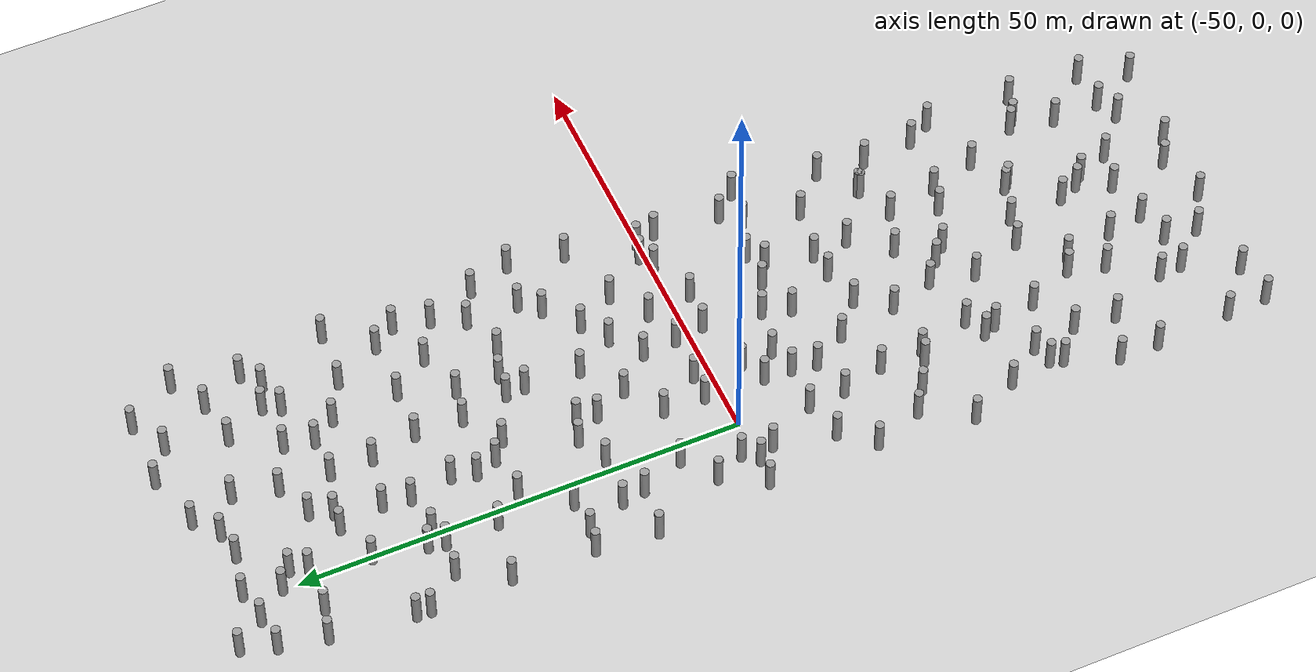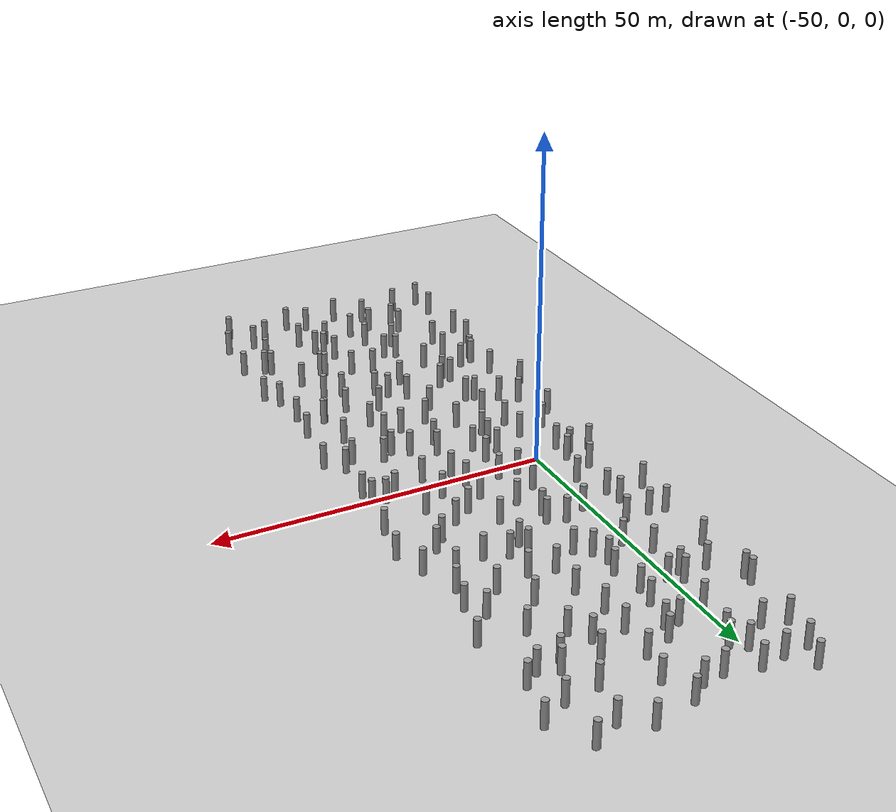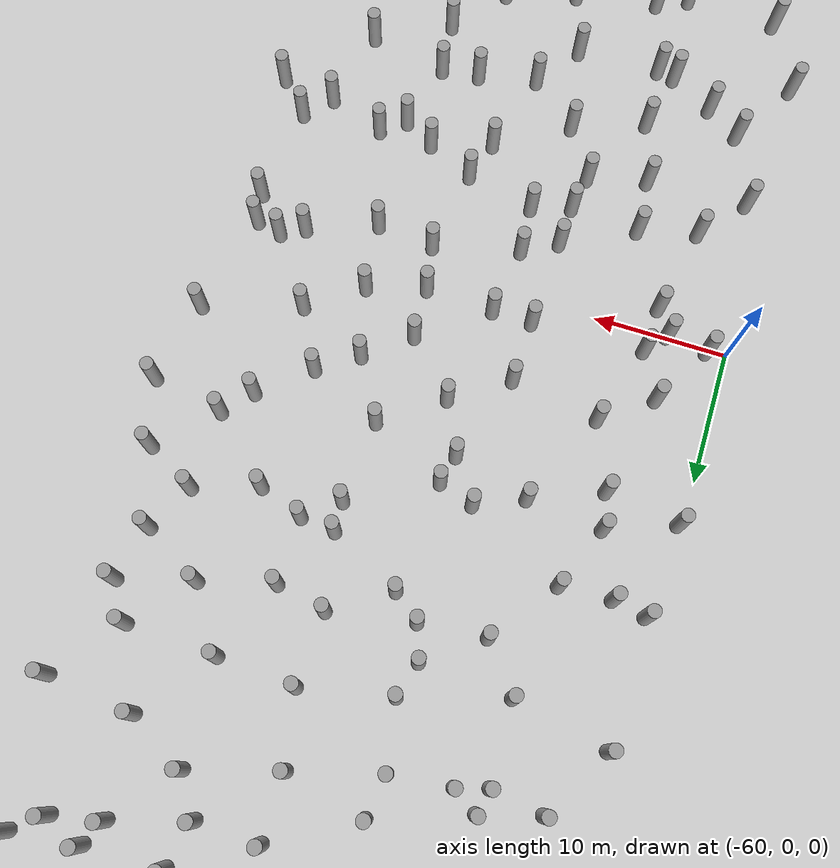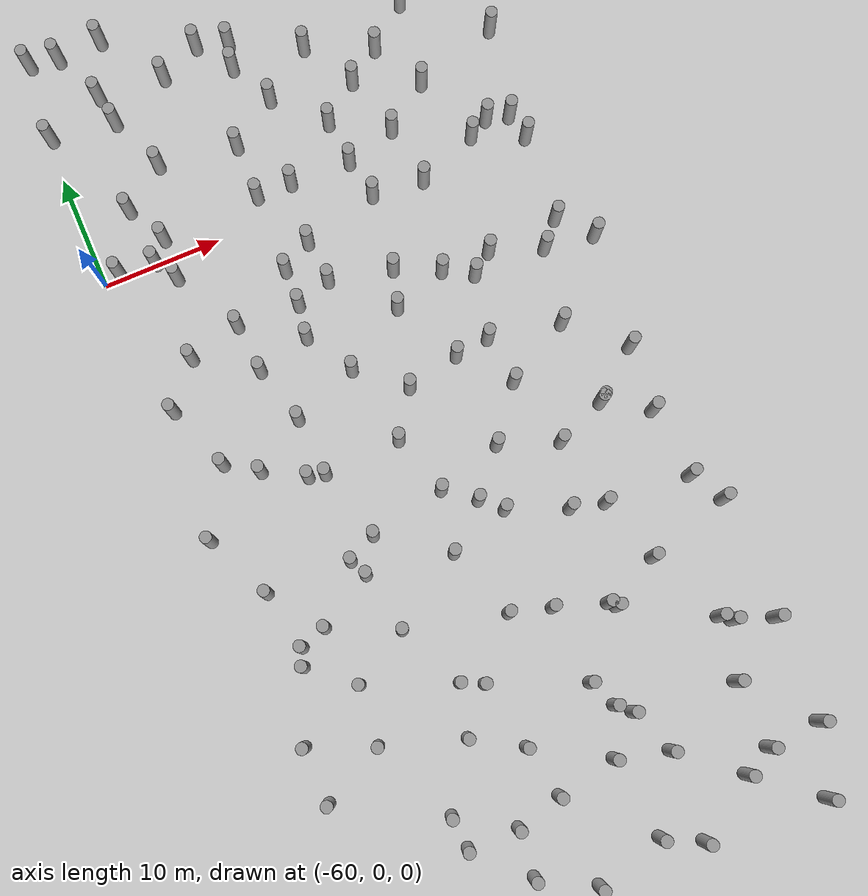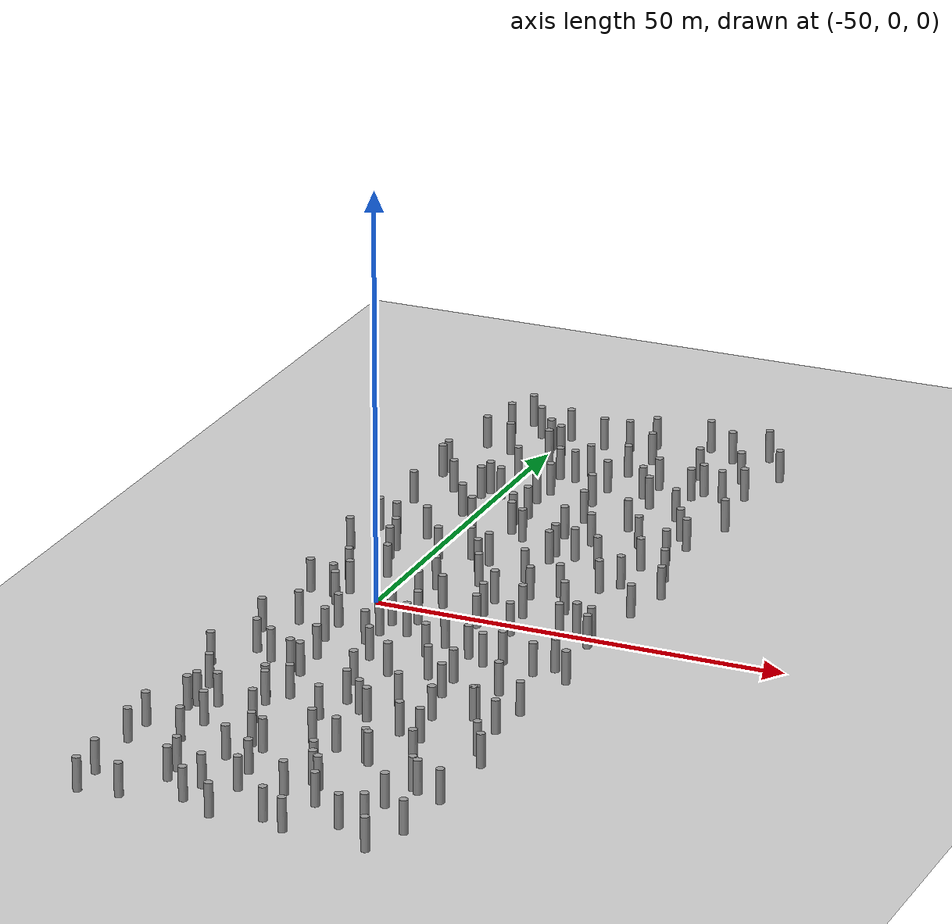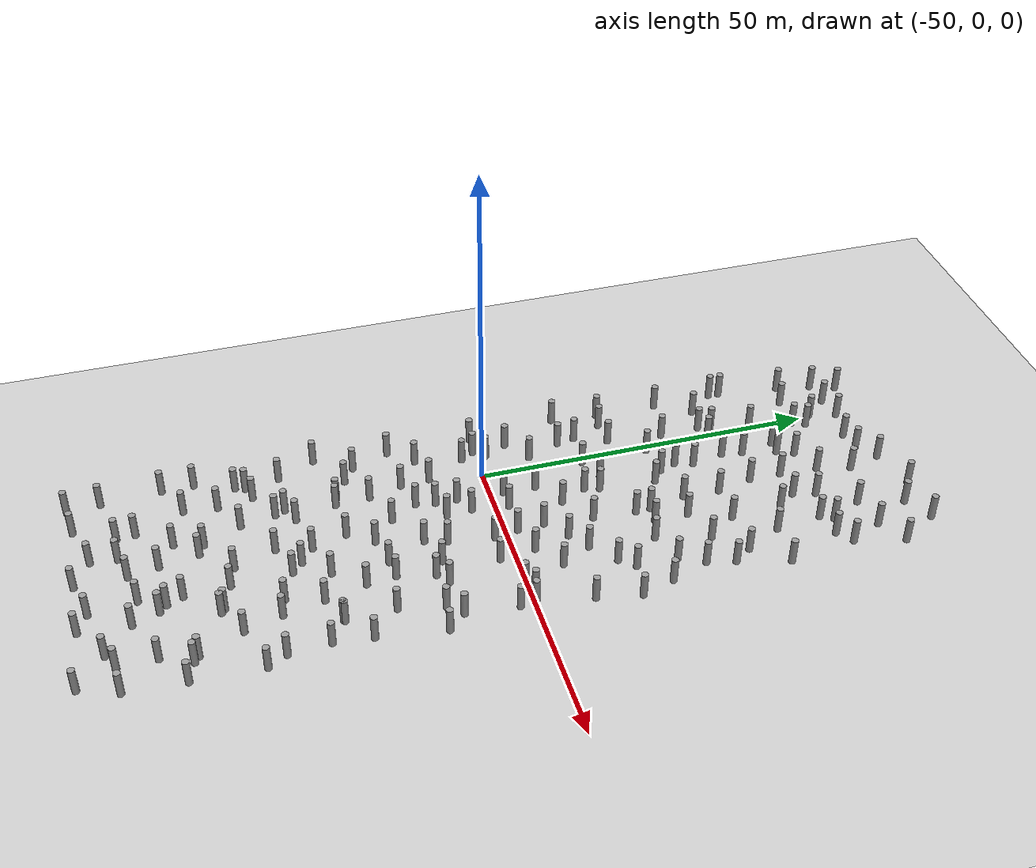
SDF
<sdf version="1.6">
 <world name="default">
  <model name="ground_plane">
   <static>1</static>
   <link name="link">
    <collision name="collision">
     <geometry><plane><normal>0 0 1</normal><size>200 200</size></plane></geometry>
     <surface><friction><ode><mu>100</mu><mu2>50</mu2></ode></friction></surface>
    </collision>
    <visual name="visual">
     <cast_shadows>0</cast_shadows>
     <geometry><plane><normal>0 0 1</normal><size>200 200</size></plane></geometry>
     <material>
      <script><uri>file://media/materials/scripts/gazebo.material</uri><name>Gazebo/Grey</name></script>
     </material>
    </visual>
   </link>
   <pose>0 100 0 0 0 0</pose>
  </model>
  <include>
   <name>tree_-58.2274148097_-58.8383424693</name>
   <uri>model://tree</uri>
   <pose>-58.2274148097 -58.8383424693 2 0 0 0</pose>
  </include>
  <include>
   <name>tree_-58.4916522315_-54.0885505528</name>
   <uri>model://tree</uri>
   <pose>-58.4916522315 -54.0885505528 2 0 0 0</pose>
  </include>
  <include>
   <name>tree_-58.9903051866_-45.344155304</name>
   <uri>model://tree</uri>
   <pose>-58.9903051866 -45.344155304 2 0 0 0</pose>
  </include>
  <include>
   <name>tree_-59.0742666468_-40.730722932</name>
   <uri>model://tree</uri>
   <pose>-59.0742666468 -40.730722932 2 0 0 0</pose>
  </include>
  <include>
   <name>tree_-56.8344243115_-35.0828755712</name>
   <uri>model://tree</uri>
   <pose>-56.8344243115 -35.0828755712 2 0 0 0</pose>
  </include>
  <include>
   <name>tree_-56.3498334585_-33.6391085534</name>
   <uri>model://tree</uri>
   <pose>-56.3498334585 -33.6391085534 2 0 0 0</pose>
  </include>
  <include>
   <name>tree_-57.2682477639_-28.6887981575</name>
   <uri>model://tree</uri>
   <pose>-57.2682477639 -28.6887981575 2 0 0 0</pose>
  </include>
  <include>
   <name>tree_-59.8201435387_-23.1401341406</name>
   <uri>model://tree</uri>
   <pose>-59.8201435387 -23.1401341406 2 0 0 0</pose>
  </include>
  <include>
   <name>tree_-56.640564499_-17.8299297852</name>
   <uri>model://tree</uri>
   <pose>-56.640564499 -17.8299297852 2 0 0 0</pose>
  </include>
  <include>
   <name>tree_-58.6699227876_-12.2633457693</name>
   <uri>model://tree</uri>
   <pose>-58.6699227876 -12.2633457693 2 0 0 0</pose>
  </include>
  <include>
   <name>tree_-55.7125337996_-8.7544738364</name>
   <uri>model://tree</uri>
   <pose>-55.7125337996 -8.7544738364 2 0 0 0</pose>
  </include>
  <include>
   <name>tree_-55.4535133352_-0.0317501232224</name>
   <uri>model://tree</uri>
   <pose>-55.4535133352 -0.0317501232224 2 0 0 0</pose>
  </include>
  <include>
   <name>tree_-58.5228750858_0.31885613598</name>
   <uri>model://tree</uri>
   <pose>-58.5228750858 0.31885613598 2 0 0 0</pose>
  </include>
  <include>
   <name>tree_-55.8228398987_5.02941124096</name>
   <uri>model://tree</uri>
   <pose>-55.8228398987 5.02941124096 2 0 0 0</pose>
  </include>
  <include>
   <name>tree_-59.5610232251_13.4654506251</name>
   <uri>model://tree</uri>
   <pose>-59.5610232251 13.4654506251 2 0 0 0</pose>
  </include>
  <include>
   <name>tree_-56.4786687583_19.9223055259</name>
   <uri>model://tree</uri>
   <pose>-56.4786687583 19.9223055259 2 0 0 0</pose>
  </include>
  <include>
   <name>tree_-58.9280560511_20.3702629405</name>
   <uri>model://tree</uri>
   <pose>-58.9280560511 20.3702629405 2 0 0 0</pose>
  </include>
  <include>
   <name>tree_-58.6954111815_29.6490568716</name>
   <uri>model://tree</uri>
   <pose>-58.6954111815 29.6490568716 2 0 0 0</pose>
  </include>
  <include>
   <name>tree_-55.7131548604_34.7773403898</name>
   <uri>model://tree</uri>
   <pose>-55.7131548604 34.7773403898 2 0 0 0</pose>
  </include>
  <include>
   <name>tree_-58.9364265224_38.7444154299</name>
   <uri>model://tree</uri>
   <pose>-58.9364265224 38.7444154299 2 0 0 0</pose>
  </include>
  <include>
   <name>tree_-58.8538250546_40.3182792419</name>
   <uri>model://tree</uri>
   <pose>-58.8538250546 40.3182792419 2 0 0 0</pose>
  </include>
  <include>
   <name>tree_-57.7645659668_49.5563178604</name>
   <uri>model://tree</uri>
   <pose>-57.7645659668 49.5563178604 2 0 0 0</pose>
  </include>
  <include>
   <name>tree_-56.7306537601_54.748548233</name>
   <uri>model://tree</uri>
   <pose>-56.7306537601 54.748548233 2 0 0 0</pose>
  </include>
  <include>
   <name>tree_-55.3705627817_58.3967211748</name>
   <uri>model://tree</uri>
   <pose>-55.3705627817 58.3967211748 2 0 0 0</pose>
  </include>
  <include>
   <name>tree_-53.5228804513_-58.3246953583</name>
   <uri>model://tree</uri>
   <pose>-53.5228804513 -58.3246953583 2 0 0 0</pose>
  </include>
  <include>
   <name>tree_-50.57534767_-52.5507168447</name>
   <uri>model://tree</uri>
   <pose>-50.57534767 -52.5507168447 2 0 0 0</pose>
  </include>
  <include>
   <name>tree_-50.7561509406_-49.8958192889</name>
   <uri>model://tree</uri>
   <pose>-50.7561509406 -49.8958192889 2 0 0 0</pose>
  </include>
  <include>
   <name>tree_-53.8439418874_-42.889889764</name>
   <uri>model://tree</uri>
   <pose>-53.8439418874 -42.889889764 2 0 0 0</pose>
  </include>
  <include>
   <name>tree_-53.3634690328_-38.0556329758</name>
   <uri>model://tree</uri>
   <pose>-53.3634690328 -38.0556329758 2 0 0 0</pose>
  </include>
  <include>
   <name>tree_-54.1499339201_-32.9399905183</name>
   <uri>model://tree</uri>
   <pose>-54.1499339201 -32.9399905183 2 0 0 0</pose>
  </include>
  <include>
   <name>tree_-50.2401408765_-28.9590396186</name>
   <uri>model://tree</uri>
   <pose>-50.2401408765 -28.9590396186 2 0 0 0</pose>
  </include>
  <include>
   <name>tree_-50.7579345337_-21.4442150399</name>
   <uri>model://tree</uri>
   <pose>-50.7579345337 -21.4442150399 2 0 0 0</pose>
  </include>
  <include>
   <name>tree_-54.0725487974_-19.5663462574</name>
   <uri>model://tree</uri>
   <pose>-54.0725487974 -19.5663462574 2 0 0 0</pose>
  </include>
  <include>
   <name>tree_-50.9766059322_-11.9019017609</name>
   <uri>model://tree</uri>
   <pose>-50.9766059322 -11.9019017609 2 0 0 0</pose>
  </include>
  <include>
   <name>tree_-51.2694239225_-7.64562829027</name>
   <uri>model://tree</uri>
   <pose>-51.2694239225 -7.64562829027 2 0 0 0</pose>
  </include>
  <include>
   <name>tree_-54.3110233292_-1.95051290627</name>
   <uri>model://tree</uri>
   <pose>-54.3110233292 -1.95051290627 2 0 0 0</pose>
  </include>
  <include>
   <name>tree_-54.0972018921_1.60428256648</name>
   <uri>model://tree</uri>
   <pose>-54.0972018921 1.60428256648 2 0 0 0</pose>
  </include>
  <include>
   <name>tree_-52.1552766256_7.75875155253</name>
   <uri>model://tree</uri>
   <pose>-52.1552766256 7.75875155253 2 0 0 0</pose>
  </include>
  <include>
   <name>tree_-54.1134861429_12.7162166982</name>
   <uri>model://tree</uri>
   <pose>-54.1134861429 12.7162166982 2 0 0 0</pose>
  </include>
  <include>
   <name>tree_-54.5623755576_15.4073435602</name>
   <uri>model://tree</uri>
   <pose>-54.5623755576 15.4073435602 2 0 0 0</pose>
  </include>
  <include>
   <name>tree_-52.6622349532_20.1188362553</name>
   <uri>model://tree</uri>
   <pose>-52.6622349532 20.1188362553 2 0 0 0</pose>
  </include>
  <include>
   <name>tree_-51.7136246397_28.287904989</name>
   <uri>model://tree</uri>
   <pose>-51.7136246397 28.287904989 2 0 0 0</pose>
  </include>
  <include>
   <name>tree_-51.8869014859_34.2263567525</name>
   <uri>model://tree</uri>
   <pose>-51.8869014859 34.2263567525 2 0 0 0</pose>
  </include>
  <include>
   <name>tree_-51.445199585_36.0518226103</name>
   <uri>model://tree</uri>
   <pose>-51.445199585 36.0518226103 2 0 0 0</pose>
  </include>
  <include>
   <name>tree_-50.3468876589_41.8640410045</name>
   <uri>model://tree</uri>
   <pose>-50.3468876589 41.8640410045 2 0 0 0</pose>
  </include>
  <include>
   <name>tree_-54.2519761836_48.6314759795</name>
   <uri>model://tree</uri>
   <pose>-54.2519761836 48.6314759795 2 0 0 0</pose>
  </include>
  <include>
   <name>tree_-50.183995465_51.713817887</name>
   <uri>model://tree</uri>
   <pose>-50.183995465 51.713817887 2 0 0 0</pose>
  </include>
  <include>
   <name>tree_-52.9109426269_55.0868911331</name>
   <uri>model://tree</uri>
   <pose>-52.9109426269 55.0868911331 2 0 0 0</pose>
  </include>
  <include>
   <name>tree_-46.8074518452_-56.4880099548</name>
   <uri>model://tree</uri>
   <pose>-46.8074518452 -56.4880099548 2 0 0 0</pose>
  </include>
  <include>
   <name>tree_-46.4274875964_-52.7013611165</name>
   <uri>model://tree</uri>
   <pose>-46.4274875964 -52.7013611165 2 0 0 0</pose>
  </include>
  <include>
   <name>tree_-47.2750811829_-45.0634503366</name>
   <uri>model://tree</uri>
   <pose>-47.2750811829 -45.0634503366 2 0 0 0</pose>
  </include>
  <include>
   <name>tree_-46.1404162311_-40.9708498844</name>
   <uri>model://tree</uri>
   <pose>-46.1404162311 -40.9708498844 2 0 0 0</pose>
  </include>
  <include>
   <name>tree_-48.6578779915_-35.4890592814</name>
   <uri>model://tree</uri>
   <pose>-48.6578779915 -35.4890592814 2 0 0 0</pose>
  </include>
  <include>
   <name>tree_-49.5763440504_-30.4244990846</name>
   <uri>model://tree</uri>
   <pose>-49.5763440504 -30.4244990846 2 0 0 0</pose>
  </include>
  <include>
   <name>tree_-47.8276170584_-27.7765805496</name>
   <uri>model://tree</uri>
   <pose>-47.8276170584 -27.7765805496 2 0 0 0</pose>
  </include>
  <include>
   <name>tree_-49.4124285432_-21.7697609955</name>
   <uri>model://tree</uri>
   <pose>-49.4124285432 -21.7697609955 2 0 0 0</pose>
  </include>
  <include>
   <name>tree_-49.6893784944_-16.7806302225</name>
   <uri>model://tree</uri>
   <pose>-49.6893784944 -16.7806302225 2 0 0 0</pose>
  </include>
  <include>
   <name>tree_-46.4836444822_-10.7845243659</name>
   <uri>model://tree</uri>
   <pose>-46.4836444822 -10.7845243659 2 0 0 0</pose>
  </include>
  <include>
   <name>tree_-46.0132335131_-7.97810379424</name>
   <uri>model://tree</uri>
   <pose>-46.0132335131 -7.97810379424 2 0 0 0</pose>
  </include>
  <include>
   <name>tree_-45.8872697938_-4.84678572524</name>
   <uri>model://tree</uri>
   <pose>-45.8872697938 -4.84678572524 2 0 0 0</pose>
  </include>
  <include>
   <name>tree_-45.620140295_1.97626840709</name>
   <uri>model://tree</uri>
   <pose>-45.620140295 1.97626840709 2 0 0 0</pose>
  </include>
  <include>
   <name>tree_-45.5157126769_6.72456035089</name>
   <uri>model://tree</uri>
   <pose>-45.5157126769 6.72456035089 2 0 0 0</pose>
  </include>
  <include>
   <name>tree_-48.9022072264_14.9160498073</name>
   <uri>model://tree</uri>
   <pose>-48.9022072264 14.9160498073 2 0 0 0</pose>
  </include>
  <include>
   <name>tree_-45.365539577_16.4924368621</name>
   <uri>model://tree</uri>
   <pose>-45.365539577 16.4924368621 2 0 0 0</pose>
  </include>
  <include>
   <name>tree_-49.0203162283_24.9607549357</name>
   <uri>model://tree</uri>
   <pose>-49.0203162283 24.9607549357 2 0 0 0</pose>
  </include>
  <include>
   <name>tree_-45.0023490841_27.9336549057</name>
   <uri>model://tree</uri>
   <pose>-45.0023490841 27.9336549057 2 0 0 0</pose>
  </include>
  <include>
   <name>tree_-49.6136075584_34.8997162761</name>
   <uri>model://tree</uri>
   <pose>-49.6136075584 34.8997162761 2 0 0 0</pose>
  </include>
  <include>
   <name>tree_-45.1515815127_35.403032866</name>
   <uri>model://tree</uri>
   <pose>-45.1515815127 35.403032866 2 0 0 0</pose>
  </include>
  <include>
   <name>tree_-45.5539744736_43.541532086</name>
   <uri>model://tree</uri>
   <pose>-45.5539744736 43.541532086 2 0 0 0</pose>
  </include>
  <include>
   <name>tree_-49.0896161592_48.3902954616</name>
   <uri>model://tree</uri>
   <pose>-49.0896161592 48.3902954616 2 0 0 0</pose>
  </include>
  <include>
   <name>tree_-48.3080631997_50.2703659217</name>
   <uri>model://tree</uri>
   <pose>-48.3080631997 50.2703659217 2 0 0 0</pose>
  </include>
  <include>
   <name>tree_-49.221649742_55.7455563007</name>
   <uri>model://tree</uri>
   <pose>-49.221649742 55.7455563007 2 0 0 0</pose>
  </include>
  <include>
   <name>tree_-42.5192222919_-58.9697346201</name>
   <uri>model://tree</uri>
   <pose>-42.5192222919 -58.9697346201 2 0 0 0</pose>
  </include>
  <include>
   <name>tree_-42.6050052407_-51.7518724159</name>
   <uri>model://tree</uri>
   <pose>-42.6050052407 -51.7518724159 2 0 0 0</pose>
  </include>
  <include>
   <name>tree_-43.40731106_-47.4590871816</name>
   <uri>model://tree</uri>
   <pose>-43.40731106 -47.4590871816 2 0 0 0</pose>
  </include>
  <include>
   <name>tree_-44.4191824964_-41.8117178599</name>
   <uri>model://tree</uri>
   <pose>-44.4191824964 -41.8117178599 2 0 0 0</pose>
  </include>
  <include>
   <name>tree_-40.4790457472_-37.5747672046</name>
   <uri>model://tree</uri>
   <pose>-40.4790457472 -37.5747672046 2 0 0 0</pose>
  </include>
  <include>
   <name>tree_-42.5171132408_-31.5933051882</name>
   <uri>model://tree</uri>
   <pose>-42.5171132408 -31.5933051882 2 0 0 0</pose>
  </include>
  <include>
   <name>tree_-41.4364504026_-26.5873864257</name>
   <uri>model://tree</uri>
   <pose>-41.4364504026 -26.5873864257 2 0 0 0</pose>
  </include>
  <include>
   <name>tree_-42.9442314143_-21.5334121947</name>
   <uri>model://tree</uri>
   <pose>-42.9442314143 -21.5334121947 2 0 0 0</pose>
  </include>
  <include>
   <name>tree_-40.4310759085_-17.924292713</name>
   <uri>model://tree</uri>
   <pose>-40.4310759085 -17.924292713 2 0 0 0</pose>
  </include>
  <include>
   <name>tree_-44.1460999659_-14.7335924706</name>
   <uri>model://tree</uri>
   <pose>-44.1460999659 -14.7335924706 2 0 0 0</pose>
  </include>
  <include>
   <name>tree_-43.017895635_-7.03209359159</name>
   <uri>model://tree</uri>
   <pose>-43.017895635 -7.03209359159 2 0 0 0</pose>
  </include>
  <include>
   <name>tree_-43.2778263715_-3.34542356851</name>
   <uri>model://tree</uri>
   <pose>-43.2778263715 -3.34542356851 2 0 0 0</pose>
  </include>
  <include>
   <name>tree_-42.6010501083_1.95132913098</name>
   <uri>model://tree</uri>
   <pose>-42.6010501083 1.95132913098 2 0 0 0</pose>
  </include>
  <include>
   <name>tree_-41.3952335889_9.54070610097</name>
   <uri>model://tree</uri>
   <pose>-41.3952335889 9.54070610097 2 0 0 0</pose>
  </include>
  <include>
   <name>tree_-43.2282741529_13.4119714744</name>
   <uri>model://tree</uri>
   <pose>-43.2282741529 13.4119714744 2 0 0 0</pose>
  </include>
  <include>
   <name>tree_-42.722246157_15.6072080706</name>
   <uri>model://tree</uri>
   <pose>-42.722246157 15.6072080706 2 0 0 0</pose>
  </include>
  <include>
   <name>tree_-42.0750774939_23.8478286468</name>
   <uri>model://tree</uri>
   <pose>-42.0750774939 23.8478286468 2 0 0 0</pose>
  </include>
  <include>
   <name>tree_-44.1044084479_25.4419853667</name>
   <uri>model://tree</uri>
   <pose>-44.1044084479 25.4419853667 2 0 0 0</pose>
  </include>
  <include>
   <name>tree_-44.2439092637_30.5734902789</name>
   <uri>model://tree</uri>
   <pose>-44.2439092637 30.5734902789 2 0 0 0</pose>
  </include>
  <include>
   <name>tree_-44.6824874307_38.4864125435</name>
   <uri>model://tree</uri>
   <pose>-44.6824874307 38.4864125435 2 0 0 0</pose>
  </include>
  <include>
   <name>tree_-43.5497187995_43.4573290595</name>
   <uri>model://tree</uri>
   <pose>-43.5497187995 43.4573290595 2 0 0 0</pose>
  </include>
  <include>
   <name>tree_-42.5100196916_45.885700367</name>
   <uri>model://tree</uri>
   <pose>-42.5100196916 45.885700367 2 0 0 0</pose>
  </include>
  <include>
   <name>tree_-44.4050109153_54.6737793332</name>
   <uri>model://tree</uri>
   <pose>-44.4050109153 54.6737793332 2 0 0 0</pose>
  </include>
  <include>
   <name>tree_-41.2285020825_55.1410515847</name>
   <uri>model://tree</uri>
   <pose>-41.2285020825 55.1410515847 2 0 0 0</pose>
  </include>
  <include>
   <name>tree_-36.843268844_-57.5795107952</name>
   <uri>model://tree</uri>
   <pose>-36.843268844 -57.5795107952 2 0 0 0</pose>
  </include>
  <include>
   <name>tree_-37.5912495792_-50.89687537</name>
   <uri>model://tree</uri>
   <pose>-37.5912495792 -50.89687537 2 0 0 0</pose>
  </include>
  <include>
   <name>tree_-35.8630590204_-47.2423326248</name>
   <uri>model://tree</uri>
   <pose>-35.8630590204 -47.2423326248 2 0 0 0</pose>
  </include>
  <include>
   <name>tree_-36.8512287185_-44.947728645</name>
   <uri>model://tree</uri>
   <pose>-36.8512287185 -44.947728645 2 0 0 0</pose>
  </include>
  <include>
   <name>tree_-37.1571956297_-38.5303834241</name>
   <uri>model://tree</uri>
   <pose>-37.1571956297 -38.5303834241 2 0 0 0</pose>
  </include>
  <include>
   <name>tree_-37.4518607695_-30.0179271985</name>
   <uri>model://tree</uri>
   <pose>-37.4518607695 -30.0179271985 2 0 0 0</pose>
  </include>
  <include>
   <name>tree_-39.0433290025_-28.4880252333</name>
   <uri>model://tree</uri>
   <pose>-39.0433290025 -28.4880252333 2 0 0 0</pose>
  </include>
  <include>
   <name>tree_-35.9112617463_-24.997350046</name>
   <uri>model://tree</uri>
   <pose>-35.9112617463 -24.997350046 2 0 0 0</pose>
  </include>
  <include>
   <name>tree_-35.9205781782_-16.9808478025</name>
   <uri>model://tree</uri>
   <pose>-35.9205781782 -16.9808478025 2 0 0 0</pose>
  </include>
  <include>
   <name>tree_-38.7034973471_-11.3998086001</name>
   <uri>model://tree</uri>
   <pose>-38.7034973471 -11.3998086001 2 0 0 0</pose>
  </include>
  <include>
   <name>tree_-37.7450540261_-8.27120725748</name>
   <uri>model://tree</uri>
   <pose>-37.7450540261 -8.27120725748 2 0 0 0</pose>
  </include>
  <include>
   <name>tree_-36.7813372185_-1.68990104773</name>
   <uri>model://tree</uri>
   <pose>-36.7813372185 -1.68990104773 2 0 0 0</pose>
  </include>
  <include>
   <name>tree_-37.4221026077_1.74743847464</name>
   <uri>model://tree</uri>
   <pose>-37.4221026077 1.74743847464 2 0 0 0</pose>
  </include>
  <include>
   <name>tree_-37.6734822068_5.63673592447</name>
   <uri>model://tree</uri>
   <pose>-37.6734822068 5.63673592447 2 0 0 0</pose>
  </include>
  <include>
   <name>tree_-37.001829326_12.7426040933</name>
   <uri>model://tree</uri>
   <pose>-37.001829326 12.7426040933 2 0 0 0</pose>
  </include>
  <include>
   <name>tree_-36.5695878215_18.9676739927</name>
   <uri>model://tree</uri>
   <pose>-36.5695878215 18.9676739927 2 0 0 0</pose>
  </include>
  <include>
   <name>tree_-36.7073838126_21.1779075647</name>
   <uri>model://tree</uri>
   <pose>-36.7073838126 21.1779075647 2 0 0 0</pose>
  </include>
  <include>
   <name>tree_-37.8439202462_26.6176704045</name>
   <uri>model://tree</uri>
   <pose>-37.8439202462 26.6176704045 2 0 0 0</pose>
  </include>
  <include>
   <name>tree_-37.6069339646_31.9791137535</name>
   <uri>model://tree</uri>
   <pose>-37.6069339646 31.9791137535 2 0 0 0</pose>
  </include>
  <include>
   <name>tree_-38.7378889814_37.233997613</name>
   <uri>model://tree</uri>
   <pose>-38.7378889814 37.233997613 2 0 0 0</pose>
  </include>
  <include>
   <name>tree_-38.7205796473_41.9686524724</name>
   <uri>model://tree</uri>
   <pose>-38.7205796473 41.9686524724 2 0 0 0</pose>
  </include>
  <include>
   <name>tree_-38.3408094072_47.5820165536</name>
   <uri>model://tree</uri>
   <pose>-38.3408094072 47.5820165536 2 0 0 0</pose>
  </include>
  <include>
   <name>tree_-37.1836131276_52.4715223238</name>
   <uri>model://tree</uri>
   <pose>-37.1836131276 52.4715223238 2 0 0 0</pose>
  </include>
  <include>
   <name>tree_-38.5530297753_57.371931317</name>
   <uri>model://tree</uri>
   <pose>-38.5530297753 57.371931317 2 0 0 0</pose>
  </include>
  <include>
   <name>tree_-33.8553586509_-59.1588226587</name>
   <uri>model://tree</uri>
   <pose>-33.8553586509 -59.1588226587 2 0 0 0</pose>
  </include>
  <include>
   <name>tree_-33.3539602723_-52.0556464401</name>
   <uri>model://tree</uri>
   <pose>-33.3539602723 -52.0556464401 2 0 0 0</pose>
  </include>
  <include>
   <name>tree_-34.7775390859_-48.2709189738</name>
   <uri>model://tree</uri>
   <pose>-34.7775390859 -48.2709189738 2 0 0 0</pose>
  </include>
  <include>
   <name>tree_-32.5070802288_-40.4171583221</name>
   <uri>model://tree</uri>
   <pose>-32.5070802288 -40.4171583221 2 0 0 0</pose>
  </include>
  <include>
   <name>tree_-33.0124407247_-39.9245789739</name>
   <uri>model://tree</uri>
   <pose>-33.0124407247 -39.9245789739 2 0 0 0</pose>
  </include>
  <include>
   <name>tree_-32.6390342798_-31.9668686404</name>
   <uri>model://tree</uri>
   <pose>-32.6390342798 -31.9668686404 2 0 0 0</pose>
  </include>
  <include>
   <name>tree_-31.0765287813_-26.8009997758</name>
   <uri>model://tree</uri>
   <pose>-31.0765287813 -26.8009997758 2 0 0 0</pose>
  </include>
  <include>
   <name>tree_-32.5398222754_-20.8154315253</name>
   <uri>model://tree</uri>
   <pose>-32.5398222754 -20.8154315253 2 0 0 0</pose>
  </include>
  <include>
   <name>tree_-32.9889774661_-16.6641762867</name>
   <uri>model://tree</uri>
   <pose>-32.9889774661 -16.6641762867 2 0 0 0</pose>
  </include>
  <include>
   <name>tree_-31.7481665425_-11.3391979943</name>
   <uri>model://tree</uri>
   <pose>-31.7481665425 -11.3391979943 2 0 0 0</pose>
  </include>
  <include>
   <name>tree_-34.1176502638_-9.95256669706</name>
   <uri>model://tree</uri>
   <pose>-34.1176502638 -9.95256669706 2 0 0 0</pose>
  </include>
  <include>
   <name>tree_-32.3838613002_-2.15446592585</name>
   <uri>model://tree</uri>
   <pose>-32.3838613002 -2.15446592585 2 0 0 0</pose>
  </include>
  <include>
   <name>tree_-33.0428337726_3.0172142332</name>
   <uri>model://tree</uri>
   <pose>-33.0428337726 3.0172142332 2 0 0 0</pose>
  </include>
  <include>
   <name>tree_-34.409877317_8.2708708578</name>
   <uri>model://tree</uri>
   <pose>-34.409877317 8.2708708578 2 0 0 0</pose>
  </include>
  <include>
   <name>tree_-31.490581199_10.2807053136</name>
   <uri>model://tree</uri>
   <pose>-31.490581199 10.2807053136 2 0 0 0</pose>
  </include>
  <include>
   <name>tree_-30.7674243343_19.7251576602</name>
   <uri>model://tree</uri>
   <pose>-30.7674243343 19.7251576602 2 0 0 0</pose>
  </include>
  <include>
   <name>tree_-34.1181184014_20.935400758</name>
   <uri>model://tree</uri>
   <pose>-34.1181184014 20.935400758 2 0 0 0</pose>
  </include>
  <include>
   <name>tree_-34.1154232227_25.8509042231</name>
   <uri>model://tree</uri>
   <pose>-34.1154232227 25.8509042231 2 0 0 0</pose>
  </include>
  <include>
   <name>tree_-31.8197515848_31.6836130949</name>
   <uri>model://tree</uri>
   <pose>-31.8197515848 31.6836130949 2 0 0 0</pose>
  </include>
  <include>
   <name>tree_-32.1906731387_39.1961752228</name>
   <uri>model://tree</uri>
   <pose>-32.1906731387 39.1961752228 2 0 0 0</pose>
  </include>
  <include>
   <name>tree_-34.0995566934_41.9067661749</name>
   <uri>model://tree</uri>
   <pose>-34.0995566934 41.9067661749 2 0 0 0</pose>
  </include>
  <include>
   <name>tree_-33.3324075027_45.1871416016</name>
   <uri>model://tree</uri>
   <pose>-33.3324075027 45.1871416016 2 0 0 0</pose>
  </include>
  <include>
   <name>tree_-30.0430158556_50.1412065233</name>
   <uri>model://tree</uri>
   <pose>-30.0430158556 50.1412065233 2 0 0 0</pose>
  </include>
  <include>
   <name>tree_-32.1115029205_59.0873815708</name>
   <uri>model://tree</uri>
   <pose>-32.1115029205 59.0873815708 2 0 0 0</pose>
  </include>
  <include>
   <name>tree_-28.7741074986_-55.9618486989</name>
   <uri>model://tree</uri>
   <pose>-28.7741074986 -55.9618486989 2 0 0 0</pose>
  </include>
  <include>
   <name>tree_-26.3272595765_-54.782769425</name>
   <uri>model://tree</uri>
   <pose>-26.3272595765 -54.782769425 2 0 0 0</pose>
  </include>
  <include>
   <name>tree_-26.4608206516_-49.3212357111</name>
   <uri>model://tree</uri>
   <pose>-26.4608206516 -49.3212357111 2 0 0 0</pose>
  </include>
  <include>
   <name>tree_-25.4851526211_-44.3026490503</name>
   <uri>model://tree</uri>
   <pose>-25.4851526211 -44.3026490503 2 0 0 0</pose>
  </include>
  <include>
   <name>tree_-28.2814894474_-38.0608082733</name>
   <uri>model://tree</uri>
   <pose>-28.2814894474 -38.0608082733 2 0 0 0</pose>
  </include>
  <include>
   <name>tree_-29.8436679056_-32.6822070983</name>
   <uri>model://tree</uri>
   <pose>-29.8436679056 -32.6822070983 2 0 0 0</pose>
  </include>
  <include>
   <name>tree_-26.8100327486_-25.1082878941</name>
   <uri>model://tree</uri>
   <pose>-26.8100327486 -25.1082878941 2 0 0 0</pose>
  </include>
  <include>
   <name>tree_-26.65473093_-24.9774798912</name>
   <uri>model://tree</uri>
   <pose>-26.65473093 -24.9774798912 2 0 0 0</pose>
  </include>
  <include>
   <name>tree_-26.948554524_-17.8689490702</name>
   <uri>model://tree</uri>
   <pose>-26.948554524 -17.8689490702 2 0 0 0</pose>
  </include>
  <include>
   <name>tree_-25.5741234692_-11.5028024328</name>
   <uri>model://tree</uri>
   <pose>-25.5741234692 -11.5028024328 2 0 0 0</pose>
  </include>
  <include>
   <name>tree_-29.9275055829_-9.95628693867</name>
   <uri>model://tree</uri>
   <pose>-29.9275055829 -9.95628693867 2 0 0 0</pose>
  </include>
  <include>
   <name>tree_-27.1714716924_-0.185834248015</name>
   <uri>model://tree</uri>
   <pose>-27.1714716924 -0.185834248015 2 0 0 0</pose>
  </include>
  <include>
   <name>tree_-25.4187117178_0.753543851583</name>
   <uri>model://tree</uri>
   <pose>-25.4187117178 0.753543851583 2 0 0 0</pose>
  </include>
  <include>
   <name>tree_-29.1045363794_5.88029053534</name>
   <uri>model://tree</uri>
   <pose>-29.1045363794 5.88029053534 2 0 0 0</pose>
  </include>
  <include>
   <name>tree_-27.8933684647_13.2938964082</name>
   <uri>model://tree</uri>
   <pose>-27.8933684647 13.2938964082 2 0 0 0</pose>
  </include>
  <include>
   <name>tree_-26.0669944518_15.3919366991</name>
   <uri>model://tree</uri>
   <pose>-26.0669944518 15.3919366991 2 0 0 0</pose>
  </include>
  <include>
   <name>tree_-25.9768458267_21.2869075801</name>
   <uri>model://tree</uri>
   <pose>-25.9768458267 21.2869075801 2 0 0 0</pose>
  </include>
  <include>
   <name>tree_-28.7259642888_27.3426738912</name>
   <uri>model://tree</uri>
   <pose>-28.7259642888 27.3426738912 2 0 0 0</pose>
  </include>
  <include>
   <name>tree_-25.09989425_31.4815461391</name>
   <uri>model://tree</uri>
   <pose>-25.09989425 31.4815461391 2 0 0 0</pose>
  </include>
  <include>
   <name>tree_-27.8363190765_36.8665631055</name>
   <uri>model://tree</uri>
   <pose>-27.8363190765 36.8665631055 2 0 0 0</pose>
  </include>
  <include>
   <name>tree_-28.5851621239_43.6256409969</name>
   <uri>model://tree</uri>
   <pose>-28.5851621239 43.6256409969 2 0 0 0</pose>
  </include>
  <include>
   <name>tree_-27.6765831969_45.4783026008</name>
   <uri>model://tree</uri>
   <pose>-27.6765831969 45.4783026008 2 0 0 0</pose>
  </include>
  <include>
   <name>tree_-25.0215544658_50.9526522547</name>
   <uri>model://tree</uri>
   <pose>-25.0215544658 50.9526522547 2 0 0 0</pose>
  </include>
  <include>
   <name>tree_-28.3762234067_56.6959664083</name>
   <uri>model://tree</uri>
   <pose>-28.3762234067 56.6959664083 2 0 0 0</pose>
  </include>
  <include>
   <name>tree_-23.891350666_-59.9793953705</name>
   <uri>model://tree</uri>
   <pose>-23.891350666 -59.9793953705 2 0 0 0</pose>
  </include>
  <include>
   <name>tree_-21.9069199302_-54.552157768</name>
   <uri>model://tree</uri>
   <pose>-21.9069199302 -54.552157768 2 0 0 0</pose>
  </include>
  <include>
   <name>tree_-21.4916299797_-46.0972505093</name>
   <uri>model://tree</uri>
   <pose>-21.4916299797 -46.0972505093 2 0 0 0</pose>
  </include>
  <include>
   <name>tree_-24.6336269507_-44.950029326</name>
   <uri>model://tree</uri>
   <pose>-24.6336269507 -44.950029326 2 0 0 0</pose>
  </include>
  <include>
   <name>tree_-21.1911895662_-36.0547437213</name>
   <uri>model://tree</uri>
   <pose>-21.1911895662 -36.0547437213 2 0 0 0</pose>
  </include>
  <include>
   <name>tree_-22.7732928419_-33.3154646151</name>
   <uri>model://tree</uri>
   <pose>-22.7732928419 -33.3154646151 2 0 0 0</pose>
  </include>
  <include>
   <name>tree_-23.222292982_-27.3564259145</name>
   <uri>model://tree</uri>
   <pose>-23.222292982 -27.3564259145 2 0 0 0</pose>
  </include>
  <include>
   <name>tree_-22.6829933258_-21.8388377286</name>
   <uri>model://tree</uri>
   <pose>-22.6829933258 -21.8388377286 2 0 0 0</pose>
  </include>
  <include>
   <name>tree_-21.3342708146_-12.1103064169</name>
   <uri>model://tree</uri>
   <pose>-21.3342708146 -12.1103064169 2 0 0 0</pose>
  </include>
  <include>
   <name>tree_-23.7227422114_-9.53091139746</name>
   <uri>model://tree</uri>
   <pose>-23.7227422114 -9.53091139746 2 0 0 0</pose>
  </include>
  <include>
   <name>tree_-23.0012943824_-2.01329012579</name>
   <uri>model://tree</uri>
   <pose>-23.0012943824 -2.01329012579 2 0 0 0</pose>
  </include>
  <include>
   <name>tree_-23.4808277502_0.276242063732</name>
   <uri>model://tree</uri>
   <pose>-23.4808277502 0.276242063732 2 0 0 0</pose>
  </include>
  <include>
   <name>tree_-21.8193241528_8.09609121883</name>
   <uri>model://tree</uri>
   <pose>-21.8193241528 8.09609121883 2 0 0 0</pose>
  </include>
  <include>
   <name>tree_-20.6356579032_14.4090384864</name>
   <uri>model://tree</uri>
   <pose>-20.6356579032 14.4090384864 2 0 0 0</pose>
  </include>
  <include>
   <name>tree_-22.192880088_19.2614181489</name>
   <uri>model://tree</uri>
   <pose>-22.192880088 19.2614181489 2 0 0 0</pose>
  </include>
  <include>
   <name>tree_-24.2315185933_24.8159093873</name>
   <uri>model://tree</uri>
   <pose>-24.2315185933 24.8159093873 2 0 0 0</pose>
  </include>
  <include>
   <name>tree_-23.2920097089_28.8588194992</name>
   <uri>model://tree</uri>
   <pose>-23.2920097089 28.8588194992 2 0 0 0</pose>
  </include>
  <include>
   <name>tree_-21.3402354794_36.2236425035</name>
   <uri>model://tree</uri>
   <pose>-21.3402354794 36.2236425035 2 0 0 0</pose>
  </include>
  <include>
   <name>tree_-24.9189633263_44.4331032177</name>
   <uri>model://tree</uri>
   <pose>-24.9189633263 44.4331032177 2 0 0 0</pose>
  </include>
  <include>
   <name>tree_-22.7278704706_46.133899561</name>
   <uri>model://tree</uri>
   <pose>-22.7278704706 46.133899561 2 0 0 0</pose>
  </include>
  <include>
   <name>tree_-20.9518877146_53.3003817471</name>
   <uri>model://tree</uri>
   <pose>-20.9518877146 53.3003817471 2 0 0 0</pose>
  </include>
  <include>
   <name>tree_-24.4079218886_58.8784089662</name>
   <uri>model://tree</uri>
   <pose>-24.4079218886 58.8784089662 2 0 0 0</pose>
  </include>
 </world>
</sdf>
